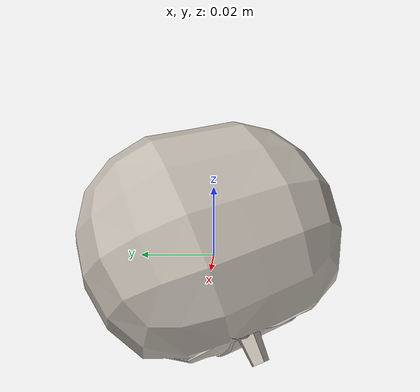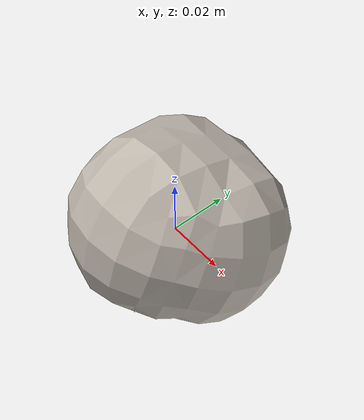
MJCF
<mujoco model="tomato_7">
  <asset>
    <mesh file="visual/model_normalized_0.obj" name="model_normalized_0_vis" scale="0.07000000000000002 0.07000000000000002 0.07000000000000002" refquat="0.19509032201612825 -0.9807852804032303 0.0 0.0"/>
    <mesh file="collision/model_normalized_collision_22.obj" name="model_normalized_collision_22._coll" scale="0.07000000000000002 0.07000000000000002 0.07000000000000002" refquat="0.19509032201612825 -0.9807852804032303 0.0 0.0"/>
    <mesh file="collision/model_normalized_collision_23.obj" name="model_normalized_collision_23._coll" scale="0.07000000000000002 0.07000000000000002 0.07000000000000002" refquat="0.19509032201612825 -0.9807852804032303 0.0 0.0"/>
    <mesh file="collision/model_normalized_collision_21.obj" name="model_normalized_collision_21._coll" scale="0.07000000000000002 0.07000000000000002 0.07000000000000002" refquat="0.19509032201612825 -0.9807852804032303 0.0 0.0"/>
    <mesh file="collision/model_normalized_collision_20.obj" name="model_normalized_collision_20._coll" scale="0.07000000000000002 0.07000000000000002 0.07000000000000002" refquat="0.19509032201612825 -0.9807852804032303 0.0 0.0"/>
    <mesh file="collision/model_normalized_collision_24.obj" name="model_normalized_collision_24._coll" scale="0.07000000000000002 0.07000000000000002 0.07000000000000002" refquat="0.19509032201612825 -0.9807852804032303 0.0 0.0"/>
    <mesh file="collision/model_normalized_collision_30.obj" name="model_normalized_collision_30._coll" scale="0.07000000000000002 0.07000000000000002 0.07000000000000002" refquat="0.19509032201612825 -0.9807852804032303 0.0 0.0"/>
    <mesh file="collision/model_normalized_collision_18.obj" name="model_normalized_collision_18._coll" scale="0.07000000000000002 0.07000000000000002 0.07000000000000002" refquat="0.19509032201612825 -0.9807852804032303 0.0 0.0"/>
    <mesh file="collision/model_normalized_collision_19.obj" name="model_normalized_collision_19._coll" scale="0.07000000000000002 0.07000000000000002 0.07000000000000002" refquat="0.19509032201612825 -0.9807852804032303 0.0 0.0"/>
    <mesh file="collision/model_normalized_collision_31.obj" name="model_normalized_collision_31._coll" scale="0.07000000000000002 0.07000000000000002 0.07000000000000002" refquat="0.19509032201612825 -0.9807852804032303 0.0 0.0"/>
    <mesh file="collision/model_normalized_collision_25.obj" name="model_normalized_collision_25._coll" scale="0.07000000000000002 0.07000000000000002 0.07000000000000002" refquat="0.19509032201612825 -0.9807852804032303 0.0 0.0"/>
    <mesh file="collision/model_normalized_collision_27.obj" name="model_normalized_collision_27._coll" scale="0.07000000000000002 0.07000000000000002 0.07000000000000002" refquat="0.19509032201612825 -0.9807852804032303 0.0 0.0"/>
    <mesh file="collision/model_normalized_collision_26.obj" name="model_normalized_collision_26._coll" scale="0.07000000000000002 0.07000000000000002 0.07000000000000002" refquat="0.19509032201612825 -0.9807852804032303 0.0 0.0"/>
    <mesh file="collision/model_normalized_collision_9.obj" name="model_normalized_collision_9._coll" scale="0.07000000000000002 0.07000000000000002 0.07000000000000002" refquat="0.19509032201612825 -0.9807852804032303 0.0 0.0"/>
    <mesh file="collision/model_normalized_collision_8.obj" name="model_normalized_collision_8._coll" scale="0.07000000000000002 0.07000000000000002 0.07000000000000002" refquat="0.19509032201612825 -0.9807852804032303 0.0 0.0"/>
    <mesh file="collision/model_normalized_collision_6.obj" name="model_normalized_collision_6._coll" scale="0.07000000000000002 0.07000000000000002 0.07000000000000002" refquat="0.19509032201612825 -0.9807852804032303 0.0 0.0"/>
    <mesh file="collision/model_normalized_collision_7.obj" name="model_normalized_collision_7._coll" scale="0.07000000000000002 0.07000000000000002 0.07000000000000002" refquat="0.19509032201612825 -0.9807852804032303 0.0 0.0"/>
    <mesh file="collision/model_normalized_collision_5.obj" name="model_normalized_collision_5._coll" scale="0.07000000000000002 0.07000000000000002 0.07000000000000002" refquat="0.19509032201612825 -0.9807852804032303 0.0 0.0"/>
    <mesh file="collision/model_normalized_collision_4.obj" name="model_normalized_collision_4._coll" scale="0.07000000000000002 0.07000000000000002 0.07000000000000002" refquat="0.19509032201612825 -0.9807852804032303 0.0 0.0"/>
    <mesh file="collision/model_normalized_collision_0.obj" name="model_normalized_collision_0._coll" scale="0.07000000000000002 0.07000000000000002 0.07000000000000002" refquat="0.19509032201612825 -0.9807852804032303 0.0 0.0"/>
    <mesh file="collision/model_normalized_collision_1.obj" name="model_normalized_collision_1._coll" scale="0.07000000000000002 0.07000000000000002 0.07000000000000002" refquat="0.19509032201612825 -0.9807852804032303 0.0 0.0"/>
    <mesh file="collision/model_normalized_collision_3.obj" name="model_normalized_collision_3._coll" scale="0.07000000000000002 0.07000000000000002 0.07000000000000002" refquat="0.19509032201612825 -0.9807852804032303 0.0 0.0"/>
    <mesh file="collision/model_normalized_collision_2.obj" name="model_normalized_collision_2._coll" scale="0.07000000000000002 0.07000000000000002 0.07000000000000002" refquat="0.19509032201612825 -0.9807852804032303 0.0 0.0"/>
    <mesh file="collision/model_normalized_collision_17.obj" name="model_normalized_collision_17._coll" scale="0.07000000000000002 0.07000000000000002 0.07000000000000002" refquat="0.19509032201612825 -0.9807852804032303 0.0 0.0"/>
    <mesh file="collision/model_normalized_collision_16.obj" name="model_normalized_collision_16._coll" scale="0.07000000000000002 0.07000000000000002 0.07000000000000002" refquat="0.19509032201612825 -0.9807852804032303 0.0 0.0"/>
    <mesh file="collision/model_normalized_collision_28.obj" name="model_normalized_collision_28._coll" scale="0.07000000000000002 0.07000000000000002 0.07000000000000002" refquat="0.19509032201612825 -0.9807852804032303 0.0 0.0"/>
    <mesh file="collision/model_normalized_collision_14.obj" name="model_normalized_collision_14._coll" scale="0.07000000000000002 0.07000000000000002 0.07000000000000002" refquat="0.19509032201612825 -0.9807852804032303 0.0 0.0"/>
    <mesh file="collision/model_normalized_collision_15.obj" name="model_normalized_collision_15._coll" scale="0.07000000000000002 0.07000000000000002 0.07000000000000002" refquat="0.19509032201612825 -0.9807852804032303 0.0 0.0"/>
    <mesh file="collision/model_normalized_collision_29.obj" name="model_normalized_collision_29._coll" scale="0.07000000000000002 0.07000000000000002 0.07000000000000002" refquat="0.19509032201612825 -0.9807852804032303 0.0 0.0"/>
    <mesh file="collision/model_normalized_collision_11.obj" name="model_normalized_collision_11._coll" scale="0.07000000000000002 0.07000000000000002 0.07000000000000002" refquat="0.19509032201612825 -0.9807852804032303 0.0 0.0"/>
    <mesh file="collision/model_normalized_collision_10.obj" name="model_normalized_collision_10._coll" scale="0.07000000000000002 0.07000000000000002 0.07000000000000002" refquat="0.19509032201612825 -0.9807852804032303 0.0 0.0"/>
    <mesh file="collision/model_normalized_collision_12.obj" name="model_normalized_collision_12._coll" scale="0.07000000000000002 0.07000000000000002 0.07000000000000002" refquat="0.19509032201612825 -0.9807852804032303 0.0 0.0"/>
    <mesh file="collision/model_normalized_collision_13.obj" name="model_normalized_collision_13._coll" scale="0.07000000000000002 0.07000000000000002 0.07000000000000002" refquat="0.19509032201612825 -0.9807852804032303 0.0 0.0"/>
    <texture type="2d" name="image0" file="visual/image0.png"/>
    <material name="texture.003" texture="image0" specular="0.5" shininess="0.0"/>
  </asset>
  <worldbody>
  <body>
      <body name="object">
        <geom solimp="0.998 0.998 0.001" solref="0.001 1" density="100" friction="0.95 0.3 0.1" type="mesh" mesh="model_normalized_0_vis" conaffinity="0" contype="0" group="1" material="texture.003"/>
        <geom solimp="0.998 0.998 0.001" solref="0.001 1" density="100" friction="0.95 0.3 0.1" type="mesh" mesh="model_normalized_collision_22._coll" group="0" rgba="0.8 0.8 0.8 0.0"/>
        <geom solimp="0.998 0.998 0.001" solref="0.001 1" density="100" friction="0.95 0.3 0.1" type="mesh" mesh="model_normalized_collision_23._coll" group="0" rgba="0.8 0.8 0.8 0.0"/>
        <geom solimp="0.998 0.998 0.001" solref="0.001 1" density="100" friction="0.95 0.3 0.1" type="mesh" mesh="model_normalized_collision_21._coll" group="0" rgba="0.8 0.8 0.8 0.0"/>
        <geom solimp="0.998 0.998 0.001" solref="0.001 1" density="100" friction="0.95 0.3 0.1" type="mesh" mesh="model_normalized_collision_20._coll" group="0" rgba="0.8 0.8 0.8 0.0"/>
        <geom solimp="0.998 0.998 0.001" solref="0.001 1" density="100" friction="0.95 0.3 0.1" type="mesh" mesh="model_normalized_collision_24._coll" group="0" rgba="0.8 0.8 0.8 0.0"/>
        <geom solimp="0.998 0.998 0.001" solref="0.001 1" density="100" friction="0.95 0.3 0.1" type="mesh" mesh="model_normalized_collision_30._coll" group="0" rgba="0.8 0.8 0.8 0.0"/>
        <geom solimp="0.998 0.998 0.001" solref="0.001 1" density="100" friction="0.95 0.3 0.1" type="mesh" mesh="model_normalized_collision_18._coll" group="0" rgba="0.8 0.8 0.8 0.0"/>
        <geom solimp="0.998 0.998 0.001" solref="0.001 1" density="100" friction="0.95 0.3 0.1" type="mesh" mesh="model_normalized_collision_19._coll" group="0" rgba="0.8 0.8 0.8 0.0"/>
        <geom solimp="0.998 0.998 0.001" solref="0.001 1" density="100" friction="0.95 0.3 0.1" type="mesh" mesh="model_normalized_collision_31._coll" group="0" rgba="0.8 0.8 0.8 0.0"/>
        <geom solimp="0.998 0.998 0.001" solref="0.001 1" density="100" friction="0.95 0.3 0.1" type="mesh" mesh="model_normalized_collision_25._coll" group="0" rgba="0.8 0.8 0.8 0.0"/>
        <geom solimp="0.998 0.998 0.001" solref="0.001 1" density="100" friction="0.95 0.3 0.1" type="mesh" mesh="model_normalized_collision_27._coll" group="0" rgba="0.8 0.8 0.8 0.0"/>
        <geom solimp="0.998 0.998 0.001" solref="0.001 1" density="100" friction="0.95 0.3 0.1" type="mesh" mesh="model_normalized_collision_26._coll" group="0" rgba="0.8 0.8 0.8 0.0"/>
        <geom solimp="0.998 0.998 0.001" solref="0.001 1" density="100" friction="0.95 0.3 0.1" type="mesh" mesh="model_normalized_collision_9._coll" group="0" rgba="0.8 0.8 0.8 0.0"/>
        <geom solimp="0.998 0.998 0.001" solref="0.001 1" density="100" friction="0.95 0.3 0.1" type="mesh" mesh="model_normalized_collision_8._coll" group="0" rgba="0.8 0.8 0.8 0.0"/>
        <geom solimp="0.998 0.998 0.001" solref="0.001 1" density="100" friction="0.95 0.3 0.1" type="mesh" mesh="model_normalized_collision_6._coll" group="0" rgba="0.8 0.8 0.8 0.0"/>
        <geom solimp="0.998 0.998 0.001" solref="0.001 1" density="100" friction="0.95 0.3 0.1" type="mesh" mesh="model_normalized_collision_7._coll" group="0" rgba="0.8 0.8 0.8 0.0"/>
        <geom solimp="0.998 0.998 0.001" solref="0.001 1" density="100" friction="0.95 0.3 0.1" type="mesh" mesh="model_normalized_collision_5._coll" group="0" rgba="0.8 0.8 0.8 0.0"/>
        <geom solimp="0.998 0.998 0.001" solref="0.001 1" density="100" friction="0.95 0.3 0.1" type="mesh" mesh="model_normalized_collision_4._coll" group="0" rgba="0.8 0.8 0.8 0.0"/>
        <geom solimp="0.998 0.998 0.001" solref="0.001 1" density="100" friction="0.95 0.3 0.1" type="mesh" mesh="model_normalized_collision_0._coll" group="0" rgba="0.8 0.8 0.8 0.0"/>
        <geom solimp="0.998 0.998 0.001" solref="0.001 1" density="100" friction="0.95 0.3 0.1" type="mesh" mesh="model_normalized_collision_1._coll" group="0" rgba="0.8 0.8 0.8 0.0"/>
        <geom solimp="0.998 0.998 0.001" solref="0.001 1" density="100" friction="0.95 0.3 0.1" type="mesh" mesh="model_normalized_collision_3._coll" group="0" rgba="0.8 0.8 0.8 0.0"/>
        <geom solimp="0.998 0.998 0.001" solref="0.001 1" density="100" friction="0.95 0.3 0.1" type="mesh" mesh="model_normalized_collision_2._coll" group="0" rgba="0.8 0.8 0.8 0.0"/>
        <geom solimp="0.998 0.998 0.001" solref="0.001 1" density="100" friction="0.95 0.3 0.1" type="mesh" mesh="model_normalized_collision_17._coll" group="0" rgba="0.8 0.8 0.8 0.0"/>
        <geom solimp="0.998 0.998 0.001" solref="0.001 1" density="100" friction="0.95 0.3 0.1" type="mesh" mesh="model_normalized_collision_16._coll" group="0" rgba="0.8 0.8 0.8 0.0"/>
        <geom solimp="0.998 0.998 0.001" solref="0.001 1" density="100" friction="0.95 0.3 0.1" type="mesh" mesh="model_normalized_collision_28._coll" group="0" rgba="0.8 0.8 0.8 0.0"/>
        <geom solimp="0.998 0.998 0.001" solref="0.001 1" density="100" friction="0.95 0.3 0.1" type="mesh" mesh="model_normalized_collision_14._coll" group="0" rgba="0.8 0.8 0.8 0.0"/>
        <geom solimp="0.998 0.998 0.001" solref="0.001 1" density="100" friction="0.95 0.3 0.1" type="mesh" mesh="model_normalized_collision_15._coll" group="0" rgba="0.8 0.8 0.8 0.0"/>
        <geom solimp="0.998 0.998 0.001" solref="0.001 1" density="100" friction="0.95 0.3 0.1" type="mesh" mesh="model_normalized_collision_29._coll" group="0" rgba="0.8 0.8 0.8 0.0"/>
        <geom solimp="0.998 0.998 0.001" solref="0.001 1" density="100" friction="0.95 0.3 0.1" type="mesh" mesh="model_normalized_collision_11._coll" group="0" rgba="0.8 0.8 0.8 0.0"/>
        <geom solimp="0.998 0.998 0.001" solref="0.001 1" density="100" friction="0.95 0.3 0.1" type="mesh" mesh="model_normalized_collision_10._coll" group="0" rgba="0.8 0.8 0.8 0.0"/>
        <geom solimp="0.998 0.998 0.001" solref="0.001 1" density="100" friction="0.95 0.3 0.1" type="mesh" mesh="model_normalized_collision_12._coll" group="0" rgba="0.8 0.8 0.8 0.0"/>
        <geom solimp="0.998 0.998 0.001" solref="0.001 1" density="100" friction="0.95 0.3 0.1" type="mesh" mesh="model_normalized_collision_13._coll" group="0" rgba="0.8 0.8 0.8 0.0"/>
      </body>
      <site rgba="0 0 0 0" size="0.005" pos="0.0001984314500000004 0.00028700344670292457 -0.03579430288391906" name="bottom_site"/>
      <site rgba="0 0 0 0" size="0.005" pos="0.0001984314500000004 0.00028700344670292457 0.028267708077961695" name="top_site"/>
      <site rgba="0 0 0 0" size="0.005" pos="0.034509793500000004 0.03529592766730396 -0.0037632974029786826" name="horizontal_radius_site"/>
    </body>
    </worldbody>
</mujoco>
